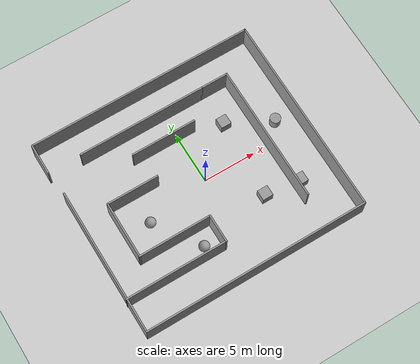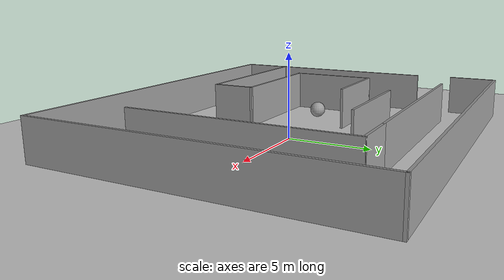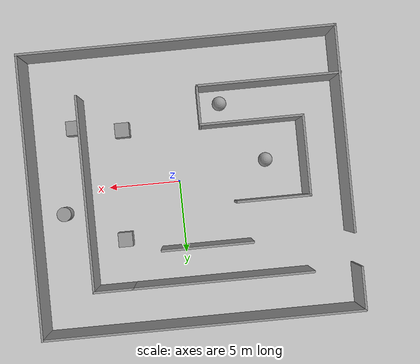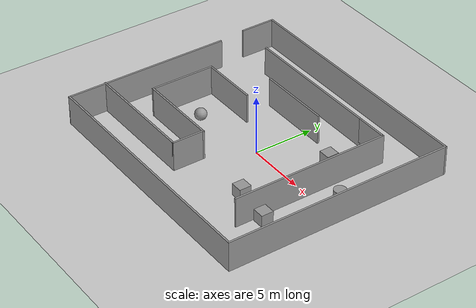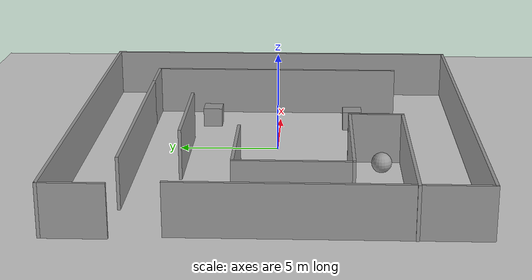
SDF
<sdf version="1.7">
 <world name="default">
  <light name="sun" type="directional">
   <pose>0 0 10 0 -0 0</pose>
   <diffuse>0.8 0.8 0.8 1</diffuse>
   <specular>0.2 0.2 0.2 1</specular>
   <attenuation>
    <range>1000</range>
    <constant>0.9</constant>
    <linear>0.01</linear>
    <quadratic>0.001</quadratic>
   </attenuation>
   <direction>-0.5 0.1 -0.9</direction>
   <spot><inner_angle>0</inner_angle><outer_angle>0</outer_angle><falloff>0</falloff></spot>
  </light>
  <model name="ground_plane">
   <static>1</static>
   <link name="link">
    <collision name="collision">
     <geometry><plane><normal>0 0 1</normal><size>100 100</size></plane></geometry>
     <surface><friction><ode><mu>100</mu><mu2>50</mu2></ode></friction></surface>
    </collision>
    <visual name="visual">
     <cast_shadows>0</cast_shadows>
     <geometry><plane><normal>0 0 1</normal><size>100 100</size></plane></geometry>
     <material>
      <script><uri>file://media/materials/scripts/gazebo.material</uri><name>Gazebo/Grey</name></script>
     </material>
    </visual>
   </link>
  </model>
  <gravity>0 0 -9.8</gravity>
  <magnetic_field>6e-06 2.3e-05 -4.2e-05</magnetic_field>
  <atmosphere type="adiabatic"/>
  <physics type="ode">
   <max_step_size>0.001</max_step_size>
   <real_time_factor>1</real_time_factor>
   <real_time_update_rate>1000</real_time_update_rate>
  </physics>
  <scene><ambient>0.4 0.4 0.4 1</ambient><background>0.7 0.7 0.7 1</background><shadows>1</shadows></scene>
  <audio><device>default</device></audio>
  <spherical_coordinates>
   <surface_model>EARTH_WGS84</surface_model>
   <latitude_deg>0</latitude_deg>
   <longitude_deg>0</longitude_deg>
   <elevation>0</elevation>
   <heading_deg>0</heading_deg>
  </spherical_coordinates>
  <model name="Untitled">
   <pose>-0.744648 0.173664 0 0 -0 0</pose>
   <link name="Wall_26">
    <collision name="Wall_26_Collision">
     <geometry><box><size>14 0.15 2.5</size></box></geometry>
     <pose>0 0 1.25 0 -0 0</pose>
    </collision>
    <visual name="Wall_26_Visual">
     <pose>0 0 1.25 0 -0 0</pose>
     <geometry><box><size>14 0.15 2.5</size></box></geometry>
     <material>
      <script><uri>file://media/materials/scripts/gazebo.material</uri><name>Gazebo/Grey</name></script>
      <ambient>1 1 1 1</ambient>
     </material>
     <meta><layer>0</layer></meta>
    </visual>
    <pose>-10.55 -2.625 0 0 -0 -1.5708</pose>
   </link>
   <link name="Wall_27">
    <collision name="Wall_27_Collision">
     <geometry><box><size>21.5 0.15 2.5</size></box></geometry>
     <pose>0 0 1.25 0 -0 0</pose>
    </collision>
    <visual name="Wall_27_Visual">
     <pose>0 0 1.25 0 -0 0</pose>
     <geometry><box><size>21.5 0.15 2.5</size></box></geometry>
     <material>
      <script><uri>file://media/materials/scripts/gazebo.material</uri><name>Gazebo/Grey</name></script>
      <ambient>1 1 1 1</ambient>
     </material>
     <meta><layer>0</layer></meta>
    </visual>
    <pose>0.125 -9.55 0 0 -0 0</pose>
   </link>
   <link name="Wall_28">
    <collision name="Wall_28_Collision">
     <geometry><box><size>19.25 0.15 2.5</size></box></geometry>
     <pose>0 0 1.25 0 -0 0</pose>
    </collision>
    <visual name="Wall_28_Visual">
     <pose>0 0 1.25 0 -0 0</pose>
     <geometry><box><size>19.25 0.15 2.5</size></box></geometry>
     <material>
      <script><uri>file://media/materials/scripts/gazebo.material</uri><name>Gazebo/Grey</name></script>
      <ambient>1 1 1 1</ambient>
     </material>
     <meta><layer>0</layer></meta>
    </visual>
    <pose>10.8 0 0 0 -0 1.5708</pose>
   </link>
   <link name="Wall_29">
    <collision name="Wall_29_Collision">
     <geometry><box><size>21.75 0.15 2.5</size></box></geometry>
     <pose>0 0 1.25 0 -0 0</pose>
    </collision>
    <visual name="Wall_29_Visual">
     <pose>0 0 1.25 0 -0 0</pose>
     <geometry><box><size>21.75 0.15 2.5</size></box></geometry>
     <material>
      <script><uri>file://media/materials/scripts/gazebo.material</uri><name>Gazebo/Grey</name></script>
      <ambient>1 1 1 1</ambient>
     </material>
     <meta><layer>0</layer></meta>
    </visual>
    <pose>-0 9.55 0 0 -0 3.14159</pose>
   </link>
   <link name="Wall_30">
    <collision name="Wall_30_Collision">
     <geometry><box><size>3 0.15 2.5</size></box></geometry>
     <pose>0 0 1.25 0 -0 0</pose>
    </collision>
    <visual name="Wall_30_Visual">
     <pose>0 0 1.25 0 -0 0</pose>
     <geometry><box><size>3 0.15 2.5</size></box></geometry>
     <material>
      <script><uri>file://media/materials/scripts/gazebo.material</uri><name>Gazebo/Grey</name></script>
      <ambient>1 1 1 1</ambient>
     </material>
     <meta><layer>0</layer></meta>
    </visual>
    <pose>-10.8 8.125 0 0 -0 -1.5708</pose>
   </link>
   <link name="Wall_32">
    <collision name="Wall_32_Collision">
     <geometry><box><size>12.25 0.15 2.5</size></box></geometry>
     <pose>0 0 1.25 0 -0 0</pose>
    </collision>
    <visual name="Wall_32_Visual">
     <pose>0 0 1.25 0 -0 0</pose>
     <geometry><box><size>12.25 0.15 2.5</size></box></geometry>
     <material>
      <script><uri>file://media/materials/scripts/gazebo.material</uri><name>Gazebo/Grey</name></script>
      <ambient>1 1 1 1</ambient>
     </material>
     <meta><layer>0</layer></meta>
    </visual>
    <pose>-1.55025 6.6805 0 0 -0 0</pose>
   </link>
   <link name="Wall_33">
    <collision name="Wall_33_Collision">
     <geometry><box><size>2.75 0.15 2.5</size></box></geometry>
     <pose>0 0 1.25 0 -0 0</pose>
    </collision>
    <visual name="Wall_33_Visual">
     <pose>0 0 1.25 0 -0 0</pose>
     <geometry><box><size>2.75 0.15 2.5</size></box></geometry>
     <material>
      <script><uri>file://media/materials/scripts/gazebo.material</uri><name>Gazebo/Grey</name></script>
      <ambient>1 1 1 1</ambient>
     </material>
     <meta><layer>0</layer></meta>
    </visual>
    <pose>5.79975 6.6805 0 0 -0 0</pose>
   </link>
   <link name="Wall_34">
    <collision name="Wall_34_Collision">
     <geometry><box><size>13.25 0.15 2.5</size></box></geometry>
     <pose>0 0 1.25 0 -0 0</pose>
    </collision>
    <visual name="Wall_34_Visual">
     <pose>0 0 1.25 0 -0 0</pose>
     <geometry><box><size>13.25 0.15 2.5</size></box></geometry>
     <material>
      <script><uri>file://media/materials/scripts/gazebo.material</uri><name>Gazebo/Grey</name></script>
      <ambient>1 1 1 1</ambient>
     </material>
     <meta><layer>0</layer></meta>
    </visual>
    <pose>7.09975 0.1305 0 0 -0 -1.5708</pose>
   </link>
   <link name="Wall_36">
    <collision name="Wall_36_Collision">
     <geometry><box><size>9.75 0.15 2.5</size></box></geometry>
     <pose>0 0 1.25 0 -0 0</pose>
    </collision>
    <visual name="Wall_36_Visual">
     <pose>0 0 1.25 0 -0 0</pose>
     <geometry><box><size>9.75 0.15 2.5</size></box></geometry>
     <material>
      <script><uri>file://media/materials/scripts/gazebo.material</uri><name>Gazebo/Grey</name></script>
      <ambient>1 1 1 1</ambient>
     </material>
     <meta><layer>0</layer></meta>
    </visual>
    <pose>-5.80175 -6.3605 0 0 -0 0</pose>
   </link>
   <link name="Wall_37">
    <collision name="Wall_37_Collision">
     <geometry><box><size>2.75 0.15 2.5</size></box></geometry>
     <pose>0 0 1.25 0 -0 0</pose>
    </collision>
    <visual name="Wall_37_Visual">
     <pose>0 0 1.25 0 -0 0</pose>
     <geometry><box><size>2.75 0.15 2.5</size></box></geometry>
     <material>
      <script><uri>file://media/materials/scripts/gazebo.material</uri><name>Gazebo/Grey</name></script>
      <ambient>1 1 1 1</ambient>
     </material>
     <meta><layer>0</layer></meta>
    </visual>
    <pose>-1.00175 -5.0605 0 0 -0 1.5708</pose>
   </link>
   <link name="Wall_38">
    <collision name="Wall_38_Collision">
     <geometry><box><size>7 0.15 2.5</size></box></geometry>
     <pose>0 0 1.25 0 -0 0</pose>
    </collision>
    <visual name="Wall_38_Visual">
     <pose>0 0 1.25 0 -0 0</pose>
     <geometry><box><size>7 0.15 2.5</size></box></geometry>
     <material>
      <script><uri>file://media/materials/scripts/gazebo.material</uri><name>Gazebo/Grey</name></script>
      <ambient>1 1 1 1</ambient>
     </material>
     <meta><layer>0</layer></meta>
    </visual>
    <pose>-4.42675 -3.7605 0 0 -0 3.14159</pose>
   </link>
   <link name="Wall_39">
    <collision name="Wall_39_Collision">
     <geometry><box><size>5.5 0.15 2.5</size></box></geometry>
     <pose>0 0 1.25 0 -0 0</pose>
    </collision>
    <visual name="Wall_39_Visual">
     <pose>0 0 1.25 0 -0 0</pose>
     <geometry><box><size>5.5 0.15 2.5</size></box></geometry>
     <material>
      <script><uri>file://media/materials/scripts/gazebo.material</uri><name>Gazebo/Grey</name></script>
      <ambient>1 1 1 1</ambient>
     </material>
     <meta><layer>0</layer></meta>
    </visual>
    <pose>-7.85175 -1.0855 0 0 -0 1.5708</pose>
   </link>
   <link name="Wall_40">
    <collision name="Wall_40_Collision">
     <geometry><box><size>5 0.15 2.5</size></box></geometry>
     <pose>0 0 1.25 0 -0 0</pose>
    </collision>
    <visual name="Wall_40_Visual">
     <pose>0 0 1.25 0 -0 0</pose>
     <geometry><box><size>5 0.15 2.5</size></box></geometry>
     <material>
      <script><uri>file://media/materials/scripts/gazebo.material</uri><name>Gazebo/Grey</name></script>
      <ambient>1 1 1 1</ambient>
     </material>
     <meta><layer>0</layer></meta>
    </visual>
    <pose>-5.42675 1.5895 0 0 -0 0</pose>
   </link>
   <link name="Wall_42">
    <collision name="Wall_42_Collision">
     <geometry><box><size>6.25 0.15 2.5</size></box></geometry>
     <pose>0 0 1.25 0 -0 0</pose>
    </collision>
    <visual name="Wall_42_Visual">
     <pose>0 0 1.25 0 -0 0</pose>
     <geometry><box><size>6.25 0.15 2.5</size></box></geometry>
     <material>
      <script><uri>file://media/materials/scripts/gazebo.material</uri><name>Gazebo/Grey</name></script>
      <ambient>1 1 1 1</ambient>
     </material>
     <meta><layer>0</layer></meta>
    </visual>
    <pose>-0.72075 4.35175 0 0 -0 0</pose>
   </link>
   <static>1</static>
  </model>
  <model name="unit_box">
   <pose>3.66223 -3.88994 0.499995 -1e-05 -0 -0</pose>
   <link name="link">
    <inertial>
     <mass>1</mass>
     <inertia>
      <ixx>0.166667</ixx>
      <ixy>0</ixy>
      <ixz>0</ixz>
      <iyy>0.166667</iyy>
      <iyz>0</iyz>
      <izz>0.166667</izz>
     </inertia>
    </inertial>
    <collision name="collision"><geometry><box><size>1 1 1</size></box></geometry></collision>
    <visual name="visual">
     <geometry><box><size>1 1 1</size></box></geometry>
     <material>
      <script><name>Gazebo/Grey</name><uri>file://media/materials/scripts/gazebo.material</uri></script>
     </material>
    </visual>
   </link>
  </model>
  <model name="unit_cylinder">
   <pose>8.18194 1.54526 0.499992 -3e-06 -4e-06 -0</pose>
   <link name="link">
    <inertial>
     <mass>1</mass>
     <inertia><ixx>0.145833</ixx><ixy>0</ixy><ixz>0</ixz><iyy>0.145833</iyy><iyz>0</iyz><izz>0.125</izz></inertia>
    </inertial>
    <collision name="collision">
     <geometry><cylinder><radius>0.5</radius><length>1</length></cylinder></geometry>
    </collision>
    <visual name="visual">
     <geometry><cylinder><radius>0.5</radius><length>1</length></cylinder></geometry>
     <material>
      <script><name>Gazebo/Grey</name><uri>file://media/materials/scripts/gazebo.material</uri></script>
     </material>
    </visual>
   </link>
  </model>
  <model name="unit_box_0">
   <pose>4.11754 3.66913 0.499995 -1e-05 -0 -0</pose>
   <link name="link">
    <inertial>
     <mass>1</mass>
     <inertia>
      <ixx>0.166667</ixx>
      <ixy>0</ixy>
      <ixz>0</ixz>
      <iyy>0.166667</iyy>
      <iyz>0</iyz>
      <izz>0.166667</izz>
     </inertia>
    </inertial>
    <collision name="collision"><geometry><box><size>1 1 1</size></box></geometry></collision>
    <visual name="visual">
     <geometry><box><size>1 1 1</size></box></geometry>
     <material>
      <script><name>Gazebo/Grey</name><uri>file://media/materials/scripts/gazebo.material</uri></script>
     </material>
    </visual>
   </link>
  </model>
  <model name="unit_box_1">
   <pose>7.00333 -4.33981 0.499995 0 1e-05 0</pose>
   <link name="link">
    <inertial>
     <mass>1</mass>
     <inertia>
      <ixx>0.166667</ixx>
      <ixy>0</ixy>
      <ixz>0</ixz>
      <iyy>0.166667</iyy>
      <iyz>0</iyz>
      <izz>0.166667</izz>
     </inertia>
    </inertial>
    <collision name="collision"><geometry><box><size>1 1 1</size></box></geometry></collision>
    <visual name="visual">
     <geometry><box><size>1 1 1</size></box></geometry>
     <material>
      <script><name>Gazebo/Grey</name><uri>file://media/materials/scripts/gazebo.material</uri></script>
     </material>
    </visual>
   </link>
  </model>
  <model name="unit_sphere">
   <pose>-3.23304 -5.12928 0.5 0 -0 0</pose>
   <link name="link">
    <inertial>
     <mass>1</mass>
     <inertia><ixx>0.1</ixx><ixy>0</ixy><ixz>0</ixz><iyy>0.1</iyy><iyz>0</iyz><izz>0.1</izz></inertia>
    </inertial>
    <collision name="collision"><geometry><sphere><radius>0.5</radius></sphere></geometry></collision>
    <visual name="visual">
     <geometry><sphere><radius>0.5</radius></sphere></geometry>
     <material>
      <script><name>Gazebo/Grey</name><uri>file://media/materials/scripts/gazebo.material</uri></script>
     </material>
    </visual>
   </link>
  </model>
  <model name="unit_sphere_0">
   <pose>-6.07906 -0.945729 0.5 0 -0 0</pose>
   <link name="link">
    <inertial>
     <mass>1</mass>
     <inertia><ixx>0.1</ixx><ixy>0</ixy><ixz>0</ixz><iyy>0.1</iyy><iyz>0</iyz><izz>0.1</izz></inertia>
    </inertial>
    <collision name="collision"><geometry><sphere><radius>0.5</radius></sphere></geometry></collision>
    <visual name="visual">
     <geometry><sphere><radius>0.5</radius></sphere></geometry>
     <material>
      <script><name>Gazebo/Grey</name><uri>file://media/materials/scripts/gazebo.material</uri></script>
     </material>
    </visual>
   </link>
  </model>
 </world>
</sdf>
